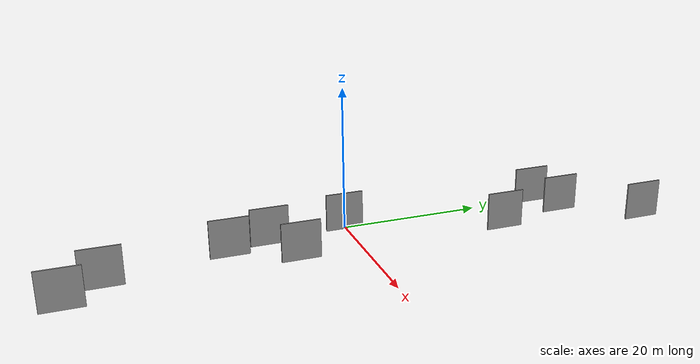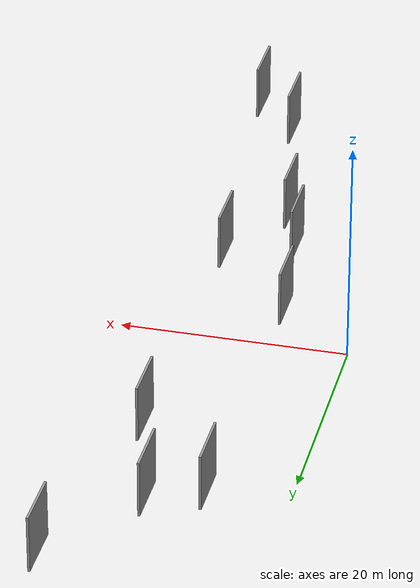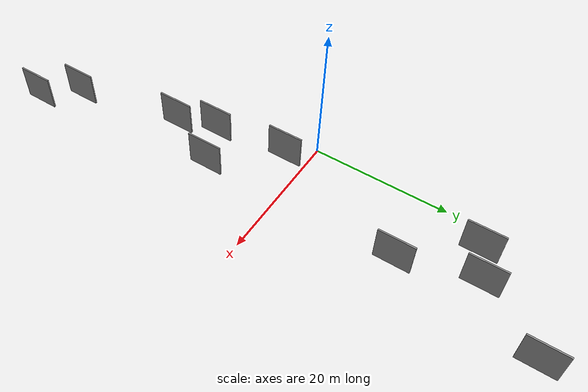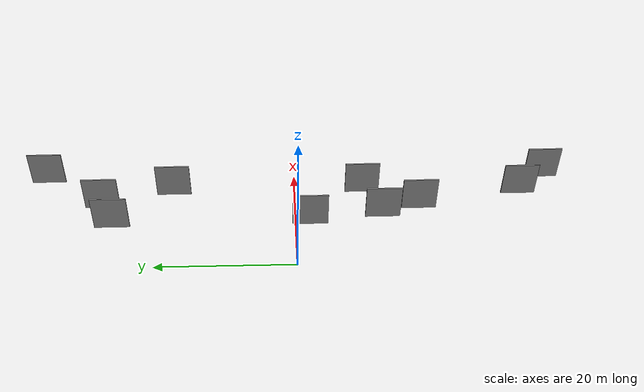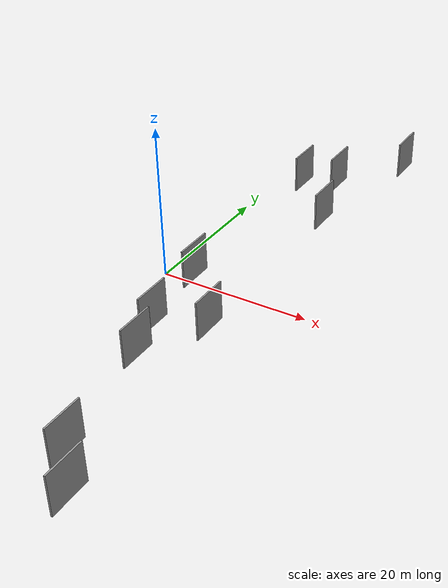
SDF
<sdf version="1.6">
 <world name="default">
  <scene>
   <sky><clouds><speed>12</speed></clouds></sky>
   <ambient>0.4 0.4 0.4 1</ambient>
   <background>0.7 0.7 0.7 1</background>
   <shadows>1</shadows>
  </scene>
  <gravity>0 0 -9.8066</gravity>
  <magnetic_field>6e-06 2.3e-05 -4.2e-05</magnetic_field>
  <physics default="0" name="default_physics" type="ode">
   <ode>
    <solver>
     <type>quick</type>
     <iters>10</iters>
     <sor>1.0</sor>
     <use_dynamic_moi_rescaling>0</use_dynamic_moi_rescaling>
    </solver>
    <constraints>
     <cfm>0</cfm>
     <erp>0.2</erp>
     <contact_max_correcting_vel>100</contact_max_correcting_vel>
     <contact_surface_layer>0.001</contact_surface_layer>
    </constraints>
   </ode>
   <max_step_size>0.004</max_step_size>
   <real_time_factor>1</real_time_factor>
   <real_time_update_rate>250</real_time_update_rate>
  </physics>
  <light name="sun" type="directional">
   <pose>0 0 10 0 0 0</pose>
   <diffuse>0.8 0.8 0.8 1</diffuse>
   <specular>0.2 0.2 0.2 1</specular>
   <attenuation>
    <range>1000</range>
    <constant>0.9</constant>
    <linear>0.01</linear>
    <quadratic>0.001</quadratic>
   </attenuation>
   <direction>-0.5 0.1 -0.9</direction>
  </light>
  <model name="grey_wall_1">
   <static>1</static>
   <pose>8.9822 -17.8556 2.5 0.000000 0.000000 1.570796</pose>
   <link name="link">
    <pose>0 0 2.50 0 0 0</pose>
    <collision name="collision"><geometry><box><size>5.00 0.2 5.00</size></box></geometry></collision>
    <visual name="visual">
     <cast_shadows>0</cast_shadows>
     <geometry><box><size>5.00 0.2 5.00</size></box></geometry>
     <material>
      <script>
       <uri>model://grey_wall/materials/scripts</uri>
       <uri>model://grey_wall/materials/textures</uri>
       <name>vrc/grey_wall</name>
      </script>
     </material>
    </visual>
   </link>
  </model>
  <model name="grey_wall_2">
   <static>1</static>
   <pose>16.6926 37.1934 2.5 0.000000 0.000000 1.570796</pose>
   <link name="link">
    <pose>0 0 2.50 0 0 0</pose>
    <collision name="collision"><geometry><box><size>5.00 0.2 5.00</size></box></geometry></collision>
    <visual name="visual">
     <cast_shadows>0</cast_shadows>
     <geometry><box><size>5.00 0.2 5.00</size></box></geometry>
     <material>
      <script>
       <uri>model://grey_wall/materials/scripts</uri>
       <uri>model://grey_wall/materials/textures</uri>
       <name>vrc/grey_wall</name>
      </script>
     </material>
    </visual>
   </link>
  </model>
  <model name="grey_wall_3">
   <static>1</static>
   <pose>13.1928 17.9822 2.5 0.000000 0.000000 1.570796</pose>
   <link name="link">
    <pose>0 0 2.50 0 0 0</pose>
    <collision name="collision"><geometry><box><size>5.00 0.2 5.00</size></box></geometry></collision>
    <visual name="visual">
     <cast_shadows>0</cast_shadows>
     <geometry><box><size>5.00 0.2 5.00</size></box></geometry>
     <material>
      <script>
       <uri>model://grey_wall/materials/scripts</uri>
       <uri>model://grey_wall/materials/textures</uri>
       <name>vrc/grey_wall</name>
      </script>
     </material>
    </visual>
   </link>
  </model>
  <model name="grey_wall_4">
   <static>1</static>
   <pose>12.0295 -33.1320 2.5 0.000000 0.000000 1.570796</pose>
   <link name="link">
    <pose>0 0 2.50 0 0 0</pose>
    <collision name="collision"><geometry><box><size>5.00 0.2 5.00</size></box></geometry></collision>
    <visual name="visual">
     <cast_shadows>0</cast_shadows>
     <geometry><box><size>5.00 0.2 5.00</size></box></geometry>
     <material>
      <script>
       <uri>model://grey_wall/materials/scripts</uri>
       <uri>model://grey_wall/materials/textures</uri>
       <name>vrc/grey_wall</name>
      </script>
     </material>
    </visual>
   </link>
  </model>
  <model name="grey_wall_5">
   <static>1</static>
   <pose>10.3907 28.1234 2.5 0.000000 0.000000 1.570796</pose>
   <link name="link">
    <pose>0 0 2.50 0 0 0</pose>
    <collision name="collision"><geometry><box><size>5.00 0.2 5.00</size></box></geometry></collision>
    <visual name="visual">
     <cast_shadows>0</cast_shadows>
     <geometry><box><size>5.00 0.2 5.00</size></box></geometry>
     <material>
      <script>
       <uri>model://grey_wall/materials/scripts</uri>
       <uri>model://grey_wall/materials/textures</uri>
       <name>vrc/grey_wall</name>
      </script>
     </material>
    </visual>
   </link>
  </model>
  <model name="grey_wall_6">
   <static>1</static>
   <pose>5.9398 26.1392 2.5 0.000000 0.000000 1.570796</pose>
   <link name="link">
    <pose>0 0 2.50 0 0 0</pose>
    <collision name="collision"><geometry><box><size>5.00 0.2 5.00</size></box></geometry></collision>
    <visual name="visual">
     <cast_shadows>0</cast_shadows>
     <geometry><box><size>5.00 0.2 5.00</size></box></geometry>
     <material>
      <script>
       <uri>model://grey_wall/materials/scripts</uri>
       <uri>model://grey_wall/materials/textures</uri>
       <name>vrc/grey_wall</name>
      </script>
     </material>
    </visual>
   </link>
  </model>
  <model name="grey_wall_7">
   <static>1</static>
   <pose>5.8897 -1.9603 2.5 0.000000 0.000000 1.570796</pose>
   <link name="link">
    <pose>0 0 2.50 0 0 0</pose>
    <collision name="collision"><geometry><box><size>5.00 0.2 5.00</size></box></geometry></collision>
    <visual name="visual">
     <cast_shadows>0</cast_shadows>
     <geometry><box><size>5.00 0.2 5.00</size></box></geometry>
     <material>
      <script>
       <uri>model://grey_wall/materials/scripts</uri>
       <uri>model://grey_wall/materials/textures</uri>
       <name>vrc/grey_wall</name>
      </script>
     </material>
    </visual>
   </link>
  </model>
  <model name="grey_wall_8">
   <static>1</static>
   <pose>7.1990 -12.4024 2.5 0.000000 0.000000 1.570796</pose>
   <link name="link">
    <pose>0 0 2.50 0 0 0</pose>
    <collision name="collision"><geometry><box><size>5.00 0.2 5.00</size></box></geometry></collision>
    <visual name="visual">
     <cast_shadows>0</cast_shadows>
     <geometry><box><size>5.00 0.2 5.00</size></box></geometry>
     <material>
      <script>
       <uri>model://grey_wall/materials/scripts</uri>
       <uri>model://grey_wall/materials/textures</uri>
       <name>vrc/grey_wall</name>
      </script>
     </material>
    </visual>
   </link>
  </model>
  <model name="grey_wall_9">
   <static>1</static>
   <pose>15.9913 -37.5903 2.5 0.000000 0.000000 1.570796</pose>
   <link name="link">
    <pose>0 0 2.50 0 0 0</pose>
    <collision name="collision"><geometry><box><size>5.00 0.2 5.00</size></box></geometry></collision>
    <visual name="visual">
     <cast_shadows>0</cast_shadows>
     <geometry><box><size>5.00 0.2 5.00</size></box></geometry>
     <material>
      <script>
       <uri>model://grey_wall/materials/scripts</uri>
       <uri>model://grey_wall/materials/textures</uri>
       <name>vrc/grey_wall</name>
      </script>
     </material>
    </visual>
   </link>
  </model>
  <model name="grey_wall_10">
   <static>1</static>
   <pose>13.0805 -9.9027 2.5 0.000000 0.000000 1.570796</pose>
   <link name="link">
    <pose>0 0 2.50 0 0 0</pose>
    <collision name="collision"><geometry><box><size>5.00 0.2 5.00</size></box></geometry></collision>
    <visual name="visual">
     <cast_shadows>0</cast_shadows>
     <geometry><box><size>5.00 0.2 5.00</size></box></geometry>
     <material>
      <script>
       <uri>model://grey_wall/materials/scripts</uri>
       <uri>model://grey_wall/materials/textures</uri>
       <name>vrc/grey_wall</name>
      </script>
     </material>
    </visual>
   </link>
  </model>
 </world>
</sdf>
